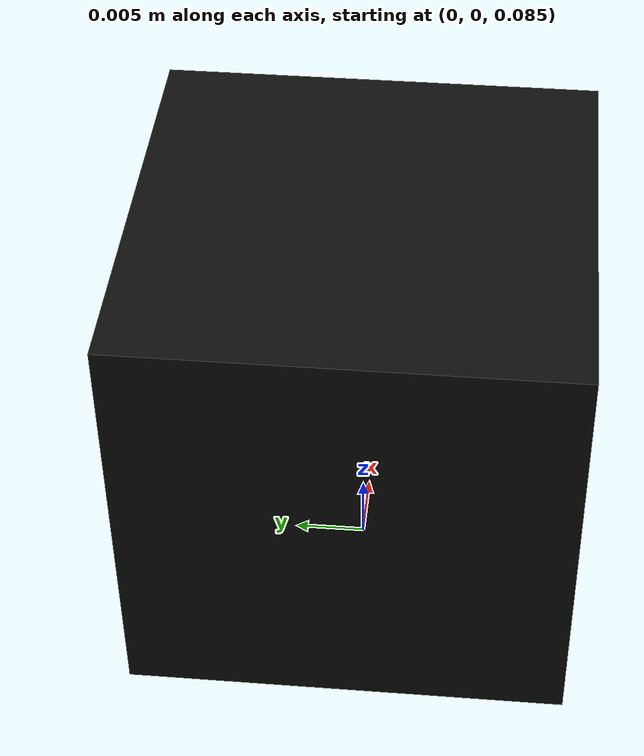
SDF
<?xml version="1.0" ?>
<sdf version="1.6">
  <model name="eye_in_hand_camera">
    <pose>0 0 0 0 0 0</pose>
    <static>false</static>
    <link name="camera_link">
      <pose>0 0 0.1 0 0 0</pose>
      <inertial>
        <mass>0.01</mass>
        <inertia>
          <ixx>0.000001</ixx>
          <ixy>0</ixy>
          <ixz>0</ixz>
          <iyy>0.000001</iyy>
          <iyz>0</iyz>
          <izz>0.000001</izz>
        </inertia>
      </inertial>
      <collision name="collision">
        <geometry>
          <box>
            <size>0.03 0.03 0.03</size>
          </box>
        </geometry>
      </collision>
      <visual name="visual">
        <geometry>
          <box>
            <size>0.03 0.03 0.03</size>
          </box>
        </geometry>
        <material>
          <ambient>0.05 0.05 0.05 1</ambient>
          <diffuse>0.05 0.05 0.05 1</diffuse>
        </material>
      </visual>
      <sensor name="camera_sensor" type="camera">
        <always_on>1</always_on>
        <update_rate>30</update_rate>
        <visualize>true</visualize>
        <camera>
          <horizontal_fov>1.047</horizontal_fov>
          <image>
            <width>640</width>
            <height>480</height>
            <format>R8G8B8</format>
          </image>
          <clip>
            <near>0.1</near>
            <far>15</far>
          </clip>
        </camera>
        <topic>camera/image</topic>
      </sensor>
    </link>
  </model>
</sdf>
